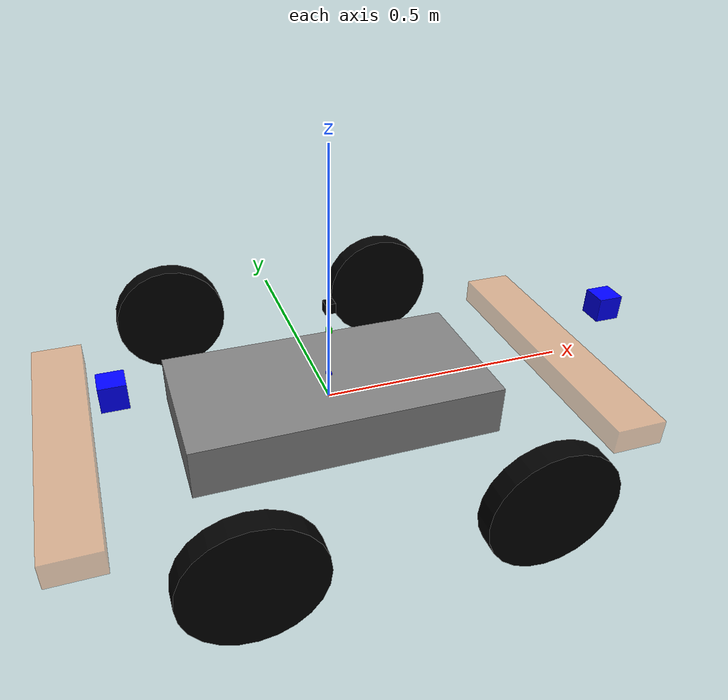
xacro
<?xml version="1.0"?>
<!-- Top-Level URDF for Ground Robot -->
<robot name="gmu-rtx-ground" xmlns:xacro="http://ros.org/wiki/xacros">

  <!-- Load chassis -->
  <xacro:include filename="chassis.urdf.xacro"/>

  <!-- Load sensors -->
  <xacro:include filename="sensors.urdf.xacro"/>

  <!-- Load shared materials -->
  <xacro:include filename="materials.xacro"/>

  <!-- Call macros -->
  <xacro:chassis/>
  <xacro:sensors/>

</robot>

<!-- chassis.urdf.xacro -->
<robot xmlns:xacro="http://ros.org/wiki/xacros">

    <xacro:macro name="chassis" params="">

        <link name="base_link">

            <visual>
                <origin rpy="0 0 0" xyz="0 0 0"/>
                <geometry>
                    <box size="0.6 0.3 0.1"/>
                </geometry>
                <material name="grey"/>
            </visual>

            <intertial>
                <mass value="5.0"/>
                <origin xyz="0 0 0" rpy="0 0 0"/>
                <inertia ixx="0.1" ixy="0" ixz="0" iyy="0.1" iyz="0" izz="0.1"/>
            </intertial>

            <collision>
              <origin rpy="0 0 0" xyz="0 0 0"/>
                <geometry>
                    <box size="0.6 0.3 0.1"/>
                </geometry>
            </collision>
        </link>

        <!-- Steering servo -->
        <link name="steering_servo_link">
            <visual>
                <origin xyz="0.3 0 0.05" rpy="0 0 0"/>
                <geometry>
                    <box size="0.05 0.05 0.05"/>
                </geometry>
                <material name="blue"/>
            </visual>
        </link>

        <joint name="steering_servo_joint" type="fixed">
            <parent link="base_link"/>
                <child link="steering_servo_link"/>
            <origin xyz="0.3 0 0.05" rpy="0 0 0"/>
        </joint>

        <!-- Transmission servo -->
        <link name="transmission_servo_link">
            <visual>
                <origin xyz="-0.2 0 0.05" rpy="0 0 0"/>
                <geometry>
                    <box size="0.05 0.05 0.05"/>
                </geometry>
                <material name="blue"/>
            </visual>
        </link>

        <joint name="transmission_servo_joint" type="fixed">
            <parent link="base_link"/>
                <child link="transmission_servo_link"/>
            <origin xyz="-0.2 0 0.05" rpy="0 0 0"/>
        </joint>

        <!-- Front steering axle -->
        <link name="front_axle_link">
            <visual>
                <origin xyz="0.25 0 0" rpy="0 0 0"/>
                <geometry>
                    <box size="0.1 0.6 0.05"/>
                </geometry>
                <material name="red"/>
            </visual>
        </link>

        <!-- change back to type=revolute and publish steering joint state for steering sim -->
        <joint name="steering_joint" type="fixed">
            <parent link="base_link"/>
            <child link="front_axle_link"/>
            <origin xyz="0.25 0 0" rpy="0 0 0"/>
            <axis xyz="0 0 1"/>
            <limit lower="-0.5236" upper="0.5236" effort="5" velocity="1.0"/>
        </joint>

        <!-- Front left wheel -->
        <link name="front_left_wheel_link">
            <visual>
            <origin xyz="0 0.2 0" rpy="1.5708 0 0"/>
            <geometry>
                <cylinder radius="0.12" length="0.04"/>
            </geometry>
            <material name="black"/>
            </visual>
        </link>

        <joint name="front_left_wheel_joint" type="fixed">
            <parent link="front_axle_link"/>
            <child link="front_left_wheel_link"/>
            <origin xyz="0 0.2 0" rpy="0 0 0"/>
        </joint>

        <!-- Front right wheel -->
        <link name="front_right_wheel_link">
            <visual>
            <origin xyz="0 -0.2 0" rpy="1.5708 0 0"/>
            <geometry>
                <cylinder radius="0.12" length="0.04"/>
            </geometry>
            <material name="black"/>
            </visual>
        </link>

        <joint name="front_right_wheel_joint" type="fixed">
            <parent link="front_axle_link"/>
            <child link="front_right_wheel_link"/>
            <origin xyz="0 -0.2 0" rpy="0 0 0"/>
        </joint>

        <!-- Rear axle -->
        <link name="rear_axle_link">
            <visual>
            <origin xyz="-0.25 0 0" rpy="0 0 0"/>
            <geometry>
                <box size="0.1 0.6 0.05"/>
            </geometry>
            <material name="red"/>
            </visual>
        </link>

        <joint name="rear_axle_joint" type="fixed">
            <parent link="base_link"/>
            <child link="rear_axle_link"/>
            <origin xyz="-0.25 0 0" rpy="0 0 0"/>
        </joint>

        <!-- Rear left wheel -->
        <link name="rear_left_wheel_link">
            <visual>
            <origin xyz="0 0.2 0" rpy="1.5708 0 0"/>
            <geometry>
                <cylinder radius="0.12" length="0.04"/>
            </geometry>
            <material name="black"/>
            </visual>
        </link>

        <joint name="rear_left_wheel_joint" type="fixed">
            <parent link="rear_axle_link"/>
            <child link="rear_left_wheel_link"/>
            <origin xyz="0 0.2 0" rpy="0 0 0"/>
        </joint>

        <!-- Rear right wheel -->
        <link name="rear_right_wheel_link">
            <visual>
            <origin xyz="0 -0.2 0" rpy="1.5708 0 0"/>
            <geometry>
                <cylinder radius="0.12" length="0.04"/>
            </geometry>
            <material name="black"/>
            </visual>
        </link>

        <joint name="rear_right_wheel_joint" type="fixed">
            <parent link="rear_axle_link"/>
            <child link="rear_right_wheel_link"/>
            <origin xyz="0 -0.2 0" rpy="0 0 0"/>
        </joint>

    </xacro:macro>

</robot>

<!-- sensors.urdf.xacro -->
<robot xmlns:xacro="http://ros.org/wiki/xacro">

  <xacro:macro name="sensors" params="">

    <!-- IMU link -->
    <link name="imu_link">
      <visual>
        <origin xyz="0 0 0" rpy="0 0 0"/>
        <geometry>
          <box size="0.01 0.01 0.01"/>
        </geometry>
        <material name="blue"/>
      </visual>
      <inertial>
        <origin xyz="0 0 0" rpy="0 0 0"/>
        <mass value="0.001"/>
        <inertia ixx="1e-6" ixy="0" ixz="0" iyy="1e-6" iyz="0" izz="1e-6"/>
      </inertial>
    </link>

    <joint name="imu_joint" type="fixed">
      <parent link="base_link"/>
      <child link="imu_link"/>
      <origin xyz="0 0 0.05" rpy="0 0 0"/>
    </joint>

    <!-- GPS link -->
    <link name="rover">
        <visual>
            <origin xyz="0 0 0" rpy="0 0 0"/>
            <geometry>
                <box size="0.01 0.01 0.01"/>
            </geometry>
            <material name="green"/>
        </visual>

        <inertial>
            <origin xyz="0 0 0" rpy="0 0 0"/>
            <mass value="0.001"/>
            <inertia ixx="1e-6" ixy="0" ixz="0" iyy="1e-6" iyz="0" izz="1e-6"/>
        </inertial>
    </link>

    <joint name="gps_joint" type="fixed">
        <parent link="base_link"/>
        <child link="rover"/>
        <origin xyz="0 0 0.15" rpy="0 0 0"/>
    </joint>

    <!-- LiDAR link -->
    <link name="lidar_link">
        <visual>
            <origin xyz="0 0 0" rpy="0 0 0"/>
            <geometry>
                <box size="0.02 0.02 0.02"/>
            </geometry>
            <material name="black"/>
        </visual>

        <inertial>
            <origin xyz="0 0 0" rpy="0 0 0"/>
            <mass value="0.001"/>
            <inertia ixx="1e-6" ixy="0" ixz="0" iyy="1e-6" iyz="0" izz="1e-6"/>
        </inertial>
    </link>

    <joint name="lidar_joint" type="fixed">
        <parent link="base_link"/>
        <child link="lidar_link"/>
        <origin xyz="0 0 0.2" rpy="0 0 0"/>
    </joint>

  </xacro:macro>

</robot>

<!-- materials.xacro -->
<robot xmlns:xacro="http://ros.org/wiki/xacro">

    <material name="green">
        <color rgba="0 1 0 1"/>
    </material>

    <material name="blue">
        <color rgba="0 0 1 1"/>
    </material>

    <material name="grey">
        <color rgba="0.5 0.5 0.5 1"/>
    </material>

    <material name="black">
        <color rgba="0 0 0 1"/>
    </material>

    <material name="red">
        <color rgba="1 0.5 0.2 0.4"/>
    </material>

</robot>
